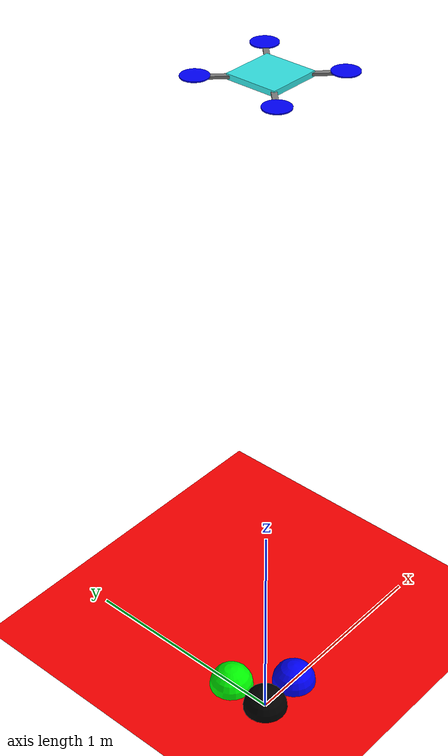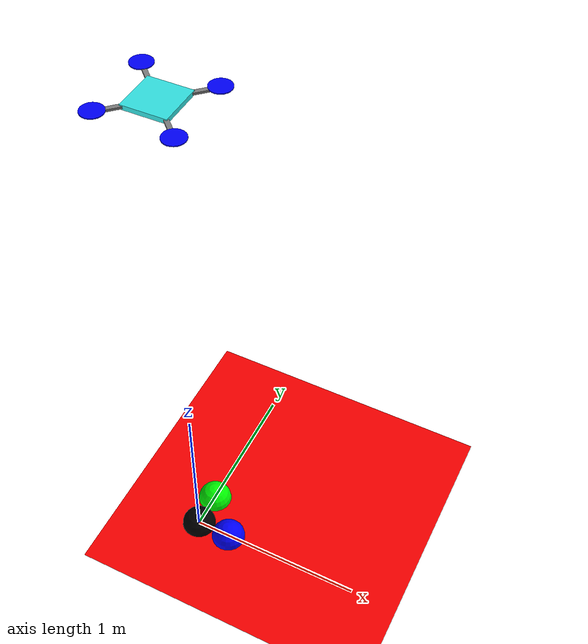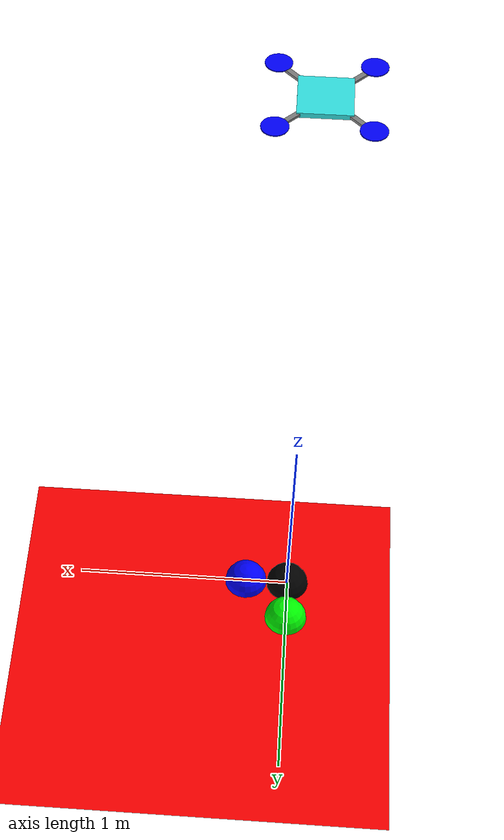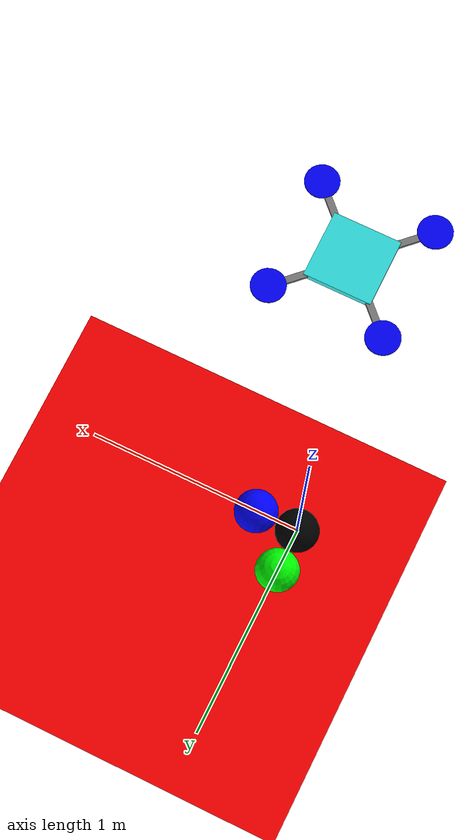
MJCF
<mujoco model='quadrotor'>
    <asset>
        <texture type="skybox" builtin="gradient" rgb1="1 1 1"
            rgb2=".6 .8 1" width="256" height="256"/>
    </asset>
    <worldbody>
        <geom name='floor' type='plane' size='5 5 .1' rgba="1 0 0 .5"/>
        <site name="origin" type="sphere" size=".1" rgba="0 0 0 1"/>
        <site name="posx" type="sphere" size=".1" pos=".2 0 0" rgba="0 0 1 1"/>
        <site name="posy" type="sphere" size=".1" pos="0 .2 0" rgba="0 1 0 1"/>

        <body pos='0 0 3' name='quad'>
            <joint type='free' pos='0 0 0'/>
            <geom name="quadbody" type="box" size=".1 .1 .01" mass="0.1" rgba=".2 .9 .9 1"/>
            <body pos=".1 .1 0" name="quadarm1" euler="0 0 45">
                <geom name="arm1" type="box" pos="0 0 0" size=".1 .01 .005" mass=".01"/>
                <geom name="rotor1" type="cylinder" pos=".1 .0 0.005" size=".05 .002" rgba="0 0 1 1" mass="0.0025"/>
                <site name="motor1" type="cylinder" pos=".1 .0 0" size=".05 .002" rgba="0 0 0 0"/>
            </body>
            <body pos="-0.1 .1 0" name="quadarm2" euler="0 0 -45">
                <geom name="arm2" type="box" pos="0 0 0" size=".1 .01 .005" mass=".01"/>
                <geom name="rotor2" type="cylinder" pos="-0.1 0 0.005" size=".05 .002" rgba="0 0 1 1" mass="0.0025"/>
                <site name="motor2" type="cylinder" pos="-0.1 0 0" size=".05 .002" rgba="0 0 0 0"/>
            </body>
            <body pos="-0.1 -0.1 0" name="quadarm3" euler="0 0 45">
                <geom name="arm3" type="box" pos="0 0 0" size=".1 .01 .005" mass=".01"/>
                <geom name="rotor3" type="cylinder" pos="-0.1 0 0.005" size=".05 .002" rgba="0 0 1 1" mass="0.0025"/>
                <site name="motor3" type="cylinder" pos="-0.1 0 0" size=".05 .002" rgba="0 0 0 0"/>
            </body>
            <body pos=".1 -0.1 0" name="quadarm4" euler="0 0 -45">
                <geom name="arm4" type="box" pos="0 0 0" size=".1 .01 .005" mass=".01"/>
                <geom name="rotor4" type="cylinder" pos=".1 0 0.005" size=".05 .002" rgba="0 0 1 1" mass="0.0025"/>
                <site name="motor4" type="cylinder" pos=".1 0 0" size=".05 .002" rgba="0 0 0 0"/>
            </body>
        </body>
    </worldbody>

    <!-- Actual rotors -->
    <actuator>
        <motor ctrllimited="true" ctrlrange="0.0 1.0" gear="0 0. 1. 0. 0. -0.1" site="motor1"/>
        <motor ctrllimited="true" ctrlrange="0.0 1.0" gear="0 0. 1. 0. 0. 0.1" site="motor2"/>
        <motor ctrllimited="true" ctrlrange="0.0 1.0" gear="0 0. 1. 0. 0. -0.1" site="motor3"/>
        <motor ctrllimited="true" ctrlrange="0.0 1.0" gear="0 0. 1. 0. 0. 0.1" site="motor4"/>
    </actuator>
</mujoco>
